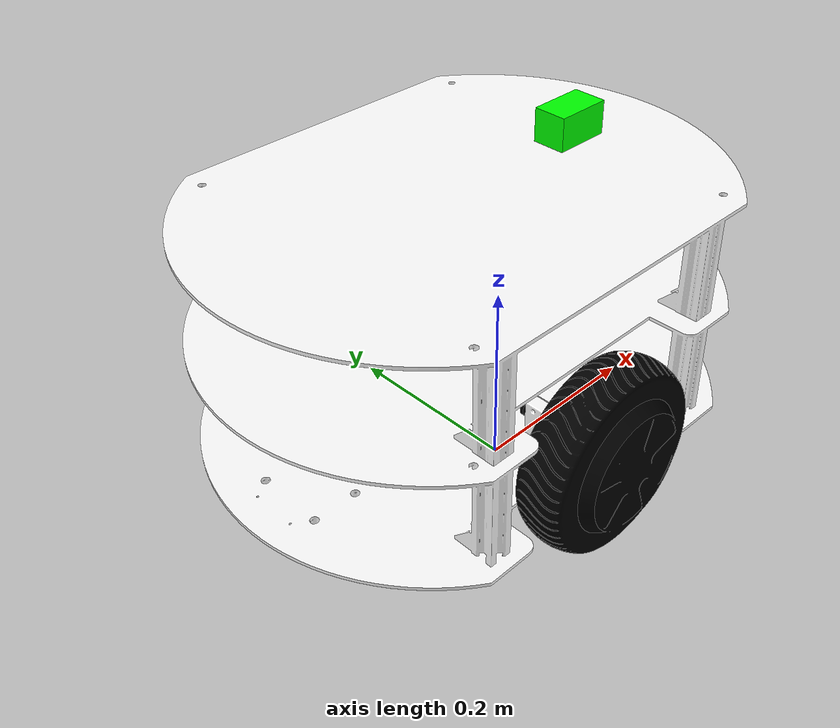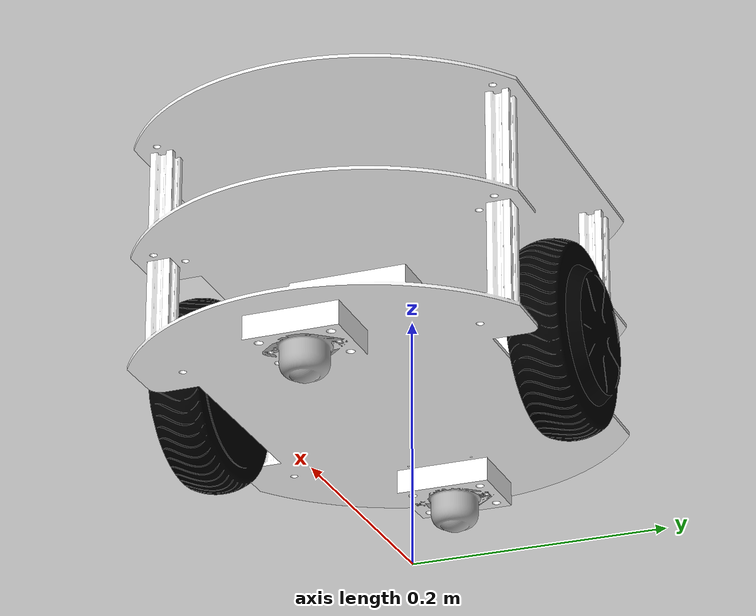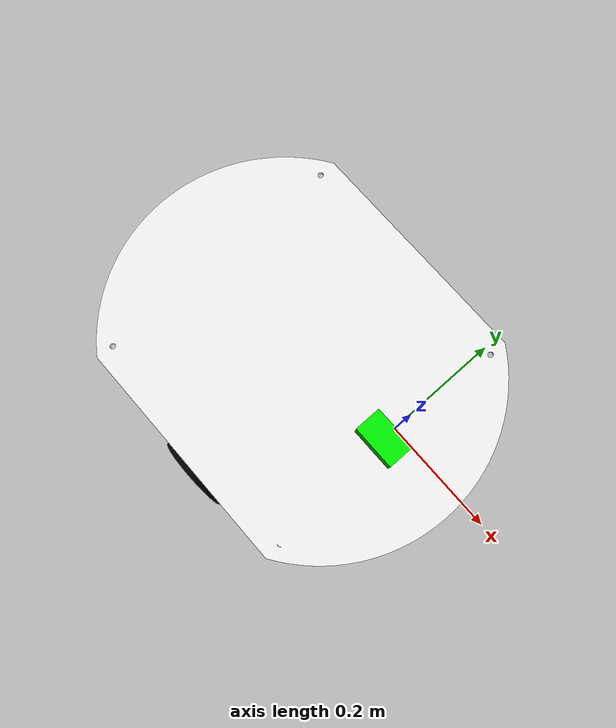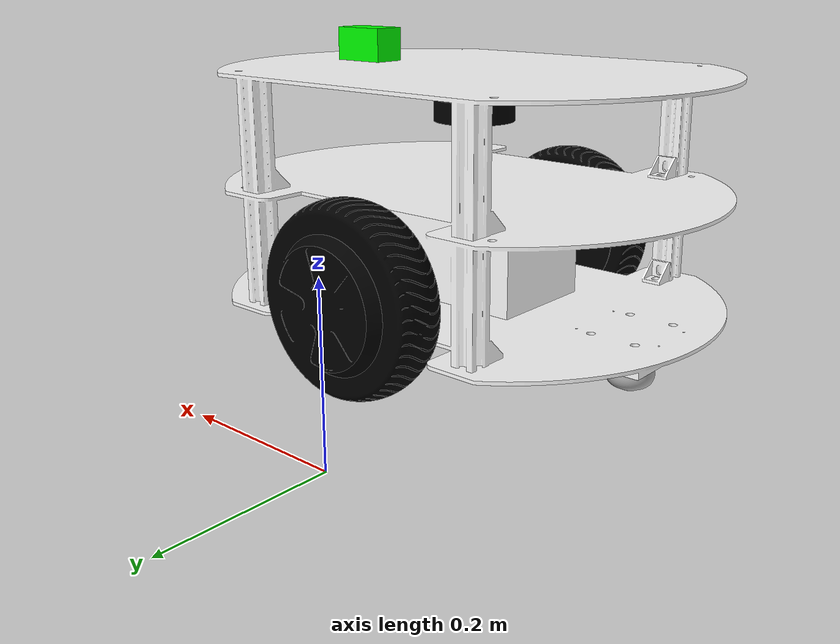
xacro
<?xml version="1.0" ?>
<robot name="slam_lidar_midplate_middle" xmlns:xacro="http://www.ros.org/wiki/xacro">

<xacro:include filename="$(find amr_description)/urdf/materials.xacro" />
<xacro:include filename="$(find amr_description)/urdf/slam_lidar_midplate_middle.ros2control" />
<xacro:include filename="$(find amr_description)/urdf/slam_lidar_midplate_middle.gazebo" />
<link name="base_link">
  <inertial>
    <origin xyz="-0.12509032426168165 -0.07395516271652715 0.26127560952038015" rpy="0 0 0"/>
    <mass value="21.041155080652292"/>
    <inertia ixx="0.188108" iyy="0.289502" izz="0.293599" ixy="-0.000208" iyz="-0.000266" ixz="-7.4e-05"/>
  </inertial>
  <visual>
    <origin xyz="0 0 0" rpy="0 0 0"/>
    <geometry>
      <mesh filename="file://$(find amr_description)/meshes/base_link.stl" scale="0.001 0.001 0.001"/>
    </geometry>
    <material name="red">
      <color rgba="1.0 1.0 1.0 1.0"/>
    </material>
  </visual>
  <collision>
    <origin xyz="0 0 0" rpy="0 0 0"/>
    <geometry>
      <mesh filename="file://$(find amr_description)/meshes/base_link.stl" scale="0.001 0.001 0.001"/>
    </geometry>
  </collision>
</link>

<link name="wheel_2">
  <inertial>
    <origin xyz="7.392549115067815e-06 -0.04011510772339327 -1.6452849457837537e-07" rpy="0 0 0"/>
    <mass value="7.7692039603760845"/>
    <inertia ixx="0.01318" iyy="0.022658" izz="0.013179" ixy="-3e-06" iyz="0.0" ixz="0.0"/>
  </inertial>
  <visual>
    <origin xyz="0.125 0.188241 -0.226241" rpy="0 0 0"/>
    <geometry>
      <mesh filename="file://$(find amr_description)/meshes/wheel_2.stl" scale="0.001 0.001 0.001"/>
    </geometry>
    <material name="red">
      <color rgba="0.0 0.0 0.0 1.0"/>
    </material>
  </visual>
  <collision>
    <origin xyz="0.125 0.188241 -0.226241" rpy="0 0 0"/>
    <geometry>
      <mesh filename="file://$(find amr_description)/meshes/wheel_2.stl" scale="0.001 0.001 0.001"/>
    </geometry>
  </collision>
</link>

<link name="wheel_1">
  <inertial>
    <origin xyz="-7.392549115026181e-06 0.040115250423588523 -1.6452849452286422e-07" rpy="0 0 0"/>
    <mass value="7.7692039603760845"/>
    <inertia ixx="0.01318" iyy="0.022658" izz="0.013179" ixy="-3e-06" iyz="-0.0" ixz="-0.0"/>
  </inertial>
  <visual>
    <origin xyz="0.125 -0.041759 -0.226241" rpy="0 0 0"/>
    <geometry>
      <mesh filename="file://$(find amr_description)/meshes/wheel_1.stl" scale="0.001 0.001 0.001"/>
    </geometry>
    <material name="red">
      <color rgba="0.0 0.0 0.0 1.0"/>
    </material>
  </visual>
  <collision>
    <origin xyz="0.125 -0.041759 -0.226241" rpy="0 0 0"/>
    <geometry>
      <mesh filename="file://$(find amr_description)/meshes/wheel_1.stl" scale="0.001 0.001 0.001"/>
    </geometry>
  </collision>
</link>

<link name="ball_caster_wheel__1__1">
  <inertial>
    <origin xyz="1.3877787807814457e-17 7.134979032596966e-08 -0.012099122560755626" rpy="0 0 0"/>
    <mass value="0.1479113408447469"/>
    <inertia ixx="2.2e-05" iyy="2e-05" izz="2.4e-05" ixy="0.0" iyz="0.0" ixz="-0.0"/>
  </inertial>
  <visual>
    <origin xyz="-0.04 0.073241 -0.174741" rpy="0 0 0"/>
    <geometry>
      <mesh filename="file://$(find amr_description)/meshes/ball_caster_wheel__1__1.stl" scale="0.001 0.001 0.001"/>
    </geometry>
    <material name="silver"/>
  </visual>
  <collision>
    <origin xyz="-0.04 0.073241 -0.174741" rpy="0 0 0"/>
    <geometry>
      <mesh filename="file://$(find amr_description)/meshes/ball_caster_wheel__1__1.stl" scale="0.001 0.001 0.001"/>
    </geometry>
  </collision>
</link>

<link name="ball_caster_wheel_1">
  <inertial>
    <origin xyz="-5.551115123125783e-17 7.134979036760303e-08 -0.012099122560755599" rpy="0 0 0"/>
    <mass value="0.1479113408447469"/>
    <inertia ixx="2.2e-05" iyy="2e-05" izz="2.4e-05" ixy="-0.0" iyz="0.0" ixz="-0.0"/>
  </inertial>
  <visual>
    <origin xyz="0.29 0.073241 -0.174741" rpy="0 0 0"/>
    <geometry>
      <mesh filename="file://$(find amr_description)/meshes/ball_caster_wheel_1.stl" scale="0.001 0.001 0.001"/>
    </geometry>
    <material name="silver"/>
  </visual>
  <collision>
    <origin xyz="0.29 0.073241 -0.174741" rpy="0 0 0"/>
    <geometry>
      <mesh filename="file://$(find amr_description)/meshes/ball_caster_wheel_1.stl" scale="0.001 0.001 0.001"/>
    </geometry>
  </collision>
</link>

<link name="lidar">
  <inertial>
    <origin xyz="0.0 7.135009752468058e-08 0.043310428649901755" rpy="0 0 0"/>
    <mass value="0.5565046796809807"/>
    <inertia ixx="0.000186" iyy="0.000186" izz="0.000341" ixy="0.0" iyz="-0.0" ixz="0.0"/>
  </inertial>
  <visual>
    <origin xyz="0.125 0.073241 -0.296241" rpy="0 0 0"/>
    <geometry>
      <mesh filename="file://$(find amr_description)/meshes/lidar.stl" scale="0.001 0.001 0.001"/>
    </geometry>
    <material name="red">
      <color rgba="0.0 0.0 0.0 1.0"/>
    </material>
  </visual>
  <collision>
    <origin xyz="0.125 0.073241 -0.296241" rpy="0 0 0"/>
    <geometry>
      <mesh filename="file://$(find amr_description)/meshes/lidar.stl" scale="0.001 0.001 0.001"/>
    </geometry>
  </collision>
</link>

 <link name="imu_link">
  <inertial>
    <origin xyz="0 0 0" rpy="0 0 0"/>
    <mass value="0.01"/>
    <inertia ixx="0.0000015" iyy="0.0000015" izz="0.0000015" ixy="0.0" iyz="0.0" ixz="0.0"/>
  </inertial>
  <visual>
    <origin xyz="0 0 0" rpy="0 0 0"/>
    <geometry>
      <box size="0.03 0.03 0.01"/>
    </geometry>
    <material name="red">
      <color rgba="0.0 1.0 0.0 1.0"/>
    </material>
  </visual>
  <collision>
    <origin xyz="0 0 0" rpy="0 0 0"/>
    <geometry>
      <box size="0.03 0.03 0.01"/>
    </geometry>
  </collision>
</link>

<link name="camera_link">
  <inertial>
    <origin xyz="0 0 0" rpy="0 0 0"/>
    <mass value="0.05"/>
    <inertia ixx="0.000001" iyy="0.000001" izz="0.000001"
             ixy="0.0" ixz="0.0" iyz="0.0"/>
  </inertial>

  <visual>
    <origin xyz="0 0 0" rpy="0 0 0"/>
    <geometry>
      <box size="0.05 0.03 0.03"/>
    </geometry>
    <material name="dark_grey">
      <color rgba="0 1.0 0.0 1.0"/>
    </material>
  </visual>

  <collision>
    <origin xyz="0 0 0" rpy="0 0 0"/>
    <geometry>
      <box size="0.05 0.03 0.03"/>
    </geometry>
  </collision>
</link>

<link name="camera_link_optical"/>

<joint name="Rigid 1" type="continuous">
  <origin xyz="-0.125 -0.188241 0.226241" rpy="0 0 0"/>
  <parent link="base_link"/>
  <child link="wheel_2"/>
  <axis xyz="0.0 1.0 0.0"/>
</joint>

<joint name="Rigid 3" type="fixed">
  <origin xyz="0.04 -0.073241 0.174741" rpy="0 0 0"/>
  <parent link="base_link"/>
  <child link="ball_caster_wheel__1__1"/>
</joint>

<joint name="Rigid 4" type="fixed">
  <origin xyz="-0.29 -0.073241 0.174741" rpy="0 0 0"/>
  <parent link="base_link"/>
  <child link="ball_caster_wheel_1"/>
</joint>

<joint name="Rigid 5" type="fixed">
  <origin xyz="-0.125 -0.073241 0.316241" rpy="0 0 0"/>
  <parent link="base_link"/>
  <child link="lidar"/>
</joint>

<joint name="Rigid 6" type="continuous">
  <origin xyz="-0.125 0.041759 0.226241" rpy="0 0 0"/>
  <parent link="base_link"/>
  <child link="wheel_1"/>
  <axis xyz="0.0 1.0 0.0"/>
</joint>

<joint name="imu_joint" type="fixed">
  <origin xyz="-0.125 -0.073241 0.290" rpy="0 0 0"/>
  <parent link="base_link"/>
  <child link="imu_link"/>
</joint>

<joint name="camera_joint" type="fixed">
  <parent link="base_link"/>
  <child link="camera_link"/>
  <origin xyz="0.0 -0.073241 0.409" rpy="0.0 0.0 0.0"/>
</joint>

<joint name="camera_optical_joint" type="fixed">
  <parent link="camera_link"/>
  <child link="camera_link_optical"/>
  <origin xyz="0.03 0 0" rpy="${-pi/2} 0 ${-pi/2}"/>
</joint>

</robot>

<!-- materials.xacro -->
<robot name="slam_lidar_midplate_middle" xmlns:xacro="http://www.ros.org/wiki/xacro" >

<material name="silver">
  <color rgba="0.700 0.700 0.700 1.000"/>
</material>

</robot>

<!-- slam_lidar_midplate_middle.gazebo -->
<robot name="slam_lidar_midplate_middle" xmlns:xacro="http://www.ros.org/wiki/xacro" >

<xacro:property name="body_color" value="Gazebo/Silver" />

<gazebo reference="base_link">
  <material>${body_color}</material>
  <mu1>0.2</mu1>
  <mu2>0.2</mu2>
  <self_collide>false</self_collide>
  <gravity>true</gravity>
</gazebo>

<gazebo reference="wheel_2">
  <material>${body_color}</material>
  <mu1>1.5</mu1>
  <mu2>1.5</mu2>
  <self_collide>true</self_collide>
</gazebo>

<gazebo reference="ball_caster_wheel__1__1">
  <material>${body_color}</material>
  <mu1>0.01</mu1>
  <mu2>0.01</mu2>
  <self_collide>true</self_collide>
</gazebo>

<gazebo reference="ball_caster_wheel_1">
  <material>${body_color}</material>
  <mu1>0.01</mu1>
  <mu2>0.01</mu2>
  <self_collide>true</self_collide>
</gazebo>

<gazebo reference="lidar">
  <material>${body_color}</material>
  <mu1>0.2</mu1>
  <mu2>0.2</mu2>
  <self_collide>false</self_collide>
</gazebo>

<gazebo reference="wheel_1">
  <material>${body_color}</material>
  <mu1>1.5</mu1>
  <mu2>1.5</mu2>
  <self_collide>true</self_collide>
</gazebo>

    <gazebo>
        <plugin filename="gz-sim-diff-drive-system" name="gz::sim::systems::DiffDrive">
            <left_joint>Rigid 6</left_joint>
            <right_joint>Rigid 1</right_joint>
            <frame_id>odom</frame_id>
            <child_frame_id>base_link</child_frame_id>
            <wheel_separation>0.23</wheel_separation>
            <wheel_radius>0.0815</wheel_radius>
            <odom_publish_frequency>20</odom_publish_frequency>
        </plugin>
    </gazebo>
    <gazebo>
        <plugin filename="gz-sim-joint-state-publisher-system"
        name="gz::sim::systems::JointStatePublisher">
        </plugin>
    </gazebo>

    <gazebo reference="lidar">
        <sensor name="gpu_lidar" type="gpu_lidar">
            <pose>0 0 0 0 0 0</pose>
            <topic>scan</topic>
            <gz_frame_id>lidar</gz_frame_id>
            <update_rate>20</update_rate>
            <visualize>true</visualize>
            <always_on>true</always_on>
            <lidar>
                <scan>
                    <horizontal>
                        <samples>360</samples>
                        <resolution>1</resolution>
                        <min_angle>-3.14159</min_angle>
                        <max_angle>3.14159</max_angle>
                    </horizontal>
                </scan>
                <range>
                    <min>0.3</min>
                    <max>12.0</max>
                    <resolution>0.01</resolution>
                </range>
                <noise>
                    <type>gaussian</type>
                    <mean>0.0</mean>
                    <stddev>0.01</stddev>
                </noise>
            </lidar>
        </sensor>
    </gazebo>
<gazebo reference="imu_link">
  <sensor name="imu_sensor" type="imu">
    <always_on>true</always_on>
    <update_rate>100</update_rate>
    <visualize>true</visualize>
    <plugin filename="gz-sim-imu-system"
            name="gz::sim::systems::Imu">
    </plugin>
    <topic>/imu/data</topic>
    <gz_frame_id>imu_link</gz_frame_id>
  </sensor>
</gazebo>

<gazebo reference="camera_link">
  <material>Gazebo/DarkGrey</material>
  <sensor name="camera_sensor" type="camera">
    <always_on>true</always_on>
    <update_rate>30</update_rate>
    <visualize>true</visualize>
    <camera name="camera">
      <horizontal_fov>1.089</horizontal_fov>
      <image>
        <width>640</width>
        <height>480</height>
        <format>R8G8B8</format>
      </image>
      <clip>
        <near>0.02</near>
        <far>100</far>
      </clip>
      <noise>
        <type>gaussian</type>
        <mean>0.0</mean>
        <stddev>0.007</stddev>
      </noise>
    </camera>
    <gz_frame_id>camera_link_optical</gz_frame_id>
    <topic>/camera/image_raw</topic>
  </sensor>
</gazebo>

</robot>
